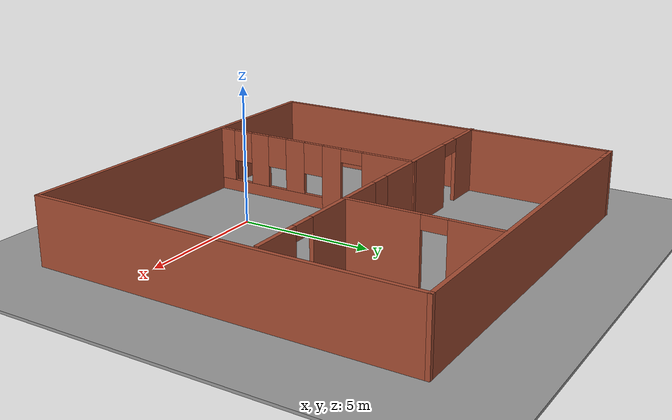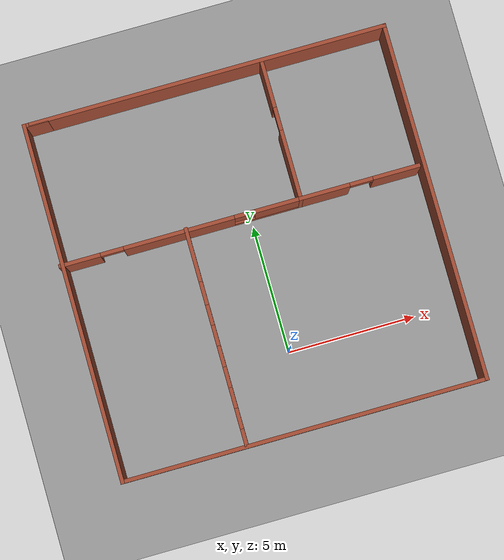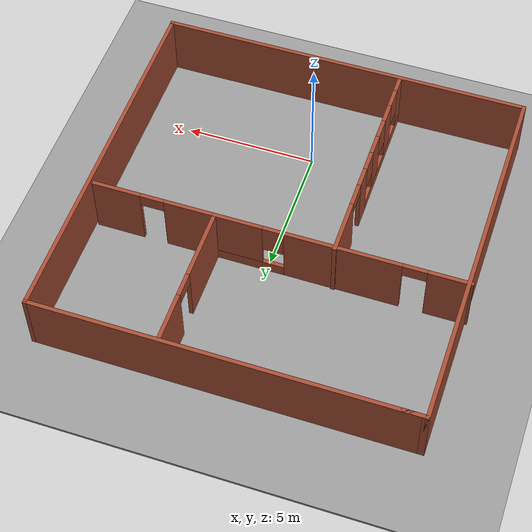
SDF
<sdf version="1.7">
 <world name="default">
  <light name="sun" type="directional">
   <pose>0 0 10 0 -0 0</pose>
   <diffuse>0.8 0.8 0.8 1</diffuse>
   <specular>0.2 0.2 0.2 1</specular>
   <attenuation>
    <range>1000</range>
    <constant>0.9</constant>
    <linear>0.01</linear>
    <quadratic>0.001</quadratic>
   </attenuation>
   <direction>-0.5 0.1 -0.9</direction>
   <spot><inner_angle>0</inner_angle><outer_angle>0</outer_angle><falloff>0</falloff></spot>
  </light>
  <model name="ground_plane">
   <static>1</static>
   <link name="link">
    <collision name="collision">
     <geometry><plane><normal>0 0 1</normal><size>100 100</size></plane></geometry>
     <surface>
      <contact><collide_bitmask>65535</collide_bitmask></contact>
      <friction><ode><mu>100</mu><mu2>50</mu2></ode></friction>
     </surface>
    </collision>
    <visual name="visual">
     <cast_shadows>0</cast_shadows>
     <geometry><plane><normal>0 0 1</normal><size>100 100</size></plane></geometry>
     <material>
      <script><uri>file://media/materials/scripts/gazebo.material</uri><name>Gazebo/Grey</name></script>
     </material>
    </visual>
   </link>
  </model>
  <gravity>0 0 -9.8</gravity>
  <magnetic_field>6e-06 2.3e-05 -4.2e-05</magnetic_field>
  <atmosphere type="adiabatic"/>
  <physics type="ode">
   <max_step_size>0.001</max_step_size>
   <real_time_factor>1</real_time_factor>
   <real_time_update_rate>1000</real_time_update_rate>
  </physics>
  <scene><ambient>0.4 0.4 0.4 1</ambient><background>0.7 0.7 0.7 1</background><shadows>1</shadows></scene>
  <audio><device>default</device></audio>
  <spherical_coordinates>
   <surface_model>EARTH_WGS84</surface_model>
   <latitude_deg>0</latitude_deg>
   <longitude_deg>0</longitude_deg>
   <elevation>0</elevation>
   <heading_deg>0</heading_deg>
  </spherical_coordinates>
  <model name="building_for_fobot">
   <pose>-0.31445 3.87784 0 0 -0 0</pose>
   <link name="Wall_11">
    <pose>-2.41398 1.45663 0 0 -0 0</pose>
    <visual name="Wall_11_Visual_0">
     <pose>-3.94034 0 1.25 0 -0 0</pose>
     <geometry><box><size>1.61932 0.15 2.5</size></box></geometry>
     <material>
      <script><uri>file://media/materials/scripts/gazebo.material</uri><name>Gazebo/Bricks</name></script>
      <ambient>1 1 1 1</ambient>
     </material>
     <meta><layer>0</layer></meta>
    </visual>
    <collision name="Wall_11_Collision_0">
     <geometry><box><size>1.61932 0.15 2.5</size></box></geometry>
     <pose>-3.94034 0 1.25 0 -0 0</pose>
    </collision>
    <visual name="Wall_11_Visual_1">
     <pose>-0.0736 0 1.25 0 -0 0</pose>
     <geometry><box><size>4.31416 0.15 2.5</size></box></geometry>
     <material>
      <script><uri>file://media/materials/scripts/gazebo.material</uri><name>Gazebo/Bricks</name></script>
      <ambient>1 1 1 1</ambient>
     </material>
     <meta><layer>0</layer></meta>
    </visual>
    <collision name="Wall_11_Collision_1">
     <geometry><box><size>4.31416 0.15 2.5</size></box></geometry>
     <pose>-0.0736 0 1.25 0 -0 0</pose>
    </collision>
    <visual name="Wall_11_Visual_2">
     <pose>3.41674 0 0.25 0 -0 0</pose>
     <geometry><box><size>2.66652 0.15 0.5</size></box></geometry>
     <material>
      <script><uri>file://media/materials/scripts/gazebo.material</uri><name>Gazebo/Bricks</name></script>
      <ambient>1 1 1 1</ambient>
     </material>
     <meta><layer>0</layer></meta>
    </visual>
    <collision name="Wall_11_Collision_2">
     <geometry><box><size>2.66652 0.15 0.5</size></box></geometry>
     <pose>3.41674 0 0.25 0 -0 0</pose>
    </collision>
    <visual name="Wall_11_Visual_3">
     <pose>3.81674 0 1.5 0 -0 0</pose>
     <geometry><box><size>1.86652 0.15 2</size></box></geometry>
     <material>
      <script><uri>file://media/materials/scripts/gazebo.material</uri><name>Gazebo/Bricks</name></script>
      <ambient>1 1 1 1</ambient>
     </material>
     <meta><layer>0</layer></meta>
    </visual>
    <collision name="Wall_11_Collision_3">
     <geometry><box><size>1.86652 0.15 2</size></box></geometry>
     <pose>3.81674 0 1.5 0 -0 0</pose>
    </collision>
    <visual name="Wall_11_Visual_4">
     <pose>2.48348 0 1.9 0 -0 0</pose>
     <geometry><box><size>0.8 0.15 1.2</size></box></geometry>
     <material>
      <script><uri>file://media/materials/scripts/gazebo.material</uri><name>Gazebo/Bricks</name></script>
      <ambient>1 1 1 1</ambient>
     </material>
     <meta><layer>0</layer></meta>
    </visual>
    <collision name="Wall_11_Collision_4">
     <geometry><box><size>0.8 0.15 1.2</size></box></geometry>
     <pose>2.48348 0 1.9 0 -0 0</pose>
    </collision>
    <visual name="Wall_11_Visual_5">
     <pose>-2.68068 0 2.25 0 -0 0</pose>
     <geometry><box><size>0.9 0.15 0.5</size></box></geometry>
     <material>
      <script><uri>file://media/materials/scripts/gazebo.material</uri><name>Gazebo/Bricks</name></script>
      <ambient>1 1 1 1</ambient>
     </material>
     <meta><layer>0</layer></meta>
    </visual>
    <collision name="Wall_11_Collision_5">
     <geometry><box><size>0.9 0.15 0.5</size></box></geometry>
     <pose>-2.68068 0 2.25 0 -0 0</pose>
    </collision>
   </link>
   <link name="Wall_12">
    <pose>2.26102 4.13162 0 0 -0 1.5708</pose>
    <visual name="Wall_12_Visual_0">
     <pose>-1.36837 0 1.25 0 -0 0</pose>
     <geometry><box><size>2.76326 0.15 2.5</size></box></geometry>
     <material>
      <script><uri>file://media/materials/scripts/gazebo.material</uri><name>Gazebo/Bricks</name></script>
      <ambient>1 1 1 1</ambient>
     </material>
     <meta><layer>0</layer></meta>
    </visual>
    <collision name="Wall_12_Collision_0">
     <geometry><box><size>2.76326 0.15 2.5</size></box></geometry>
     <pose>-1.36837 0 1.25 0 -0 0</pose>
    </collision>
    <visual name="Wall_12_Visual_1">
     <pose>1.83163 0 1.25 0 -0 0</pose>
     <geometry><box><size>1.83674 0.15 2.5</size></box></geometry>
     <material>
      <script><uri>file://media/materials/scripts/gazebo.material</uri><name>Gazebo/Bricks</name></script>
      <ambient>1 1 1 1</ambient>
     </material>
     <meta><layer>0</layer></meta>
    </visual>
    <collision name="Wall_12_Collision_1">
     <geometry><box><size>1.83674 0.15 2.5</size></box></geometry>
     <pose>1.83163 0 1.25 0 -0 0</pose>
    </collision>
    <visual name="Wall_12_Visual_2">
     <pose>0.463256 0 2.25 0 -0 0</pose>
     <geometry><box><size>0.9 0.15 0.5</size></box></geometry>
     <material>
      <script><uri>file://media/materials/scripts/gazebo.material</uri><name>Gazebo/Bricks</name></script>
      <ambient>1 1 1 1</ambient>
     </material>
     <meta><layer>0</layer></meta>
    </visual>
    <collision name="Wall_12_Collision_2">
     <geometry><box><size>0.9 0.15 0.5</size></box></geometry>
     <pose>0.463256 0 2.25 0 -0 0</pose>
    </collision>
   </link>
   <link name="Wall_16">
    <pose>-2.20397 -2.67185 0 0 -0 -1.5708</pose>
    <visual name="Wall_16_Visual_0">
     <pose>-3.19193 0 1.25 0 -0 0</pose>
     <geometry><box><size>2.11614 0.15 2.5</size></box></geometry>
     <material>
      <script><uri>file://media/materials/scripts/gazebo.material</uri><name>Gazebo/Bricks</name></script>
      <ambient>1 1 1 1</ambient>
     </material>
     <meta><layer>0</layer></meta>
    </visual>
    <collision name="Wall_16_Collision_0">
     <geometry><box><size>2.11614 0.15 2.5</size></box></geometry>
     <pose>-3.19193 0 1.25 0 -0 0</pose>
    </collision>
    <visual name="Wall_16_Visual_1">
     <pose>-0.837924 0 1.25 0 -0 0</pose>
     <geometry><box><size>0.791876 0.15 2.5</size></box></geometry>
     <material>
      <script><uri>file://media/materials/scripts/gazebo.material</uri><name>Gazebo/Bricks</name></script>
      <ambient>1 1 1 1</ambient>
     </material>
     <meta><layer>0</layer></meta>
    </visual>
    <collision name="Wall_16_Collision_1">
     <geometry><box><size>0.791876 0.15 2.5</size></box></geometry>
     <pose>-0.837924 0 1.25 0 -0 0</pose>
    </collision>
    <visual name="Wall_16_Visual_2">
     <pose>1.90401 0 0.25 0 -0 0</pose>
     <geometry><box><size>4.69199 0.15 0.5</size></box></geometry>
     <material>
      <script><uri>file://media/materials/scripts/gazebo.material</uri><name>Gazebo/Bricks</name></script>
      <ambient>1 1 1 1</ambient>
     </material>
     <meta><layer>0</layer></meta>
    </visual>
    <collision name="Wall_16_Collision_2">
     <geometry><box><size>4.69199 0.15 0.5</size></box></geometry>
     <pose>1.90401 0 0.25 0 -0 0</pose>
    </collision>
    <visual name="Wall_16_Visual_3">
     <pose>0.765413 0 1.5 0 -0 0</pose>
     <geometry><box><size>0.814798 0.15 2</size></box></geometry>
     <material>
      <script><uri>file://media/materials/scripts/gazebo.material</uri><name>Gazebo/Bricks</name></script>
      <ambient>1 1 1 1</ambient>
     </material>
     <meta><layer>0</layer></meta>
    </visual>
    <collision name="Wall_16_Collision_3">
     <geometry><box><size>0.814798 0.15 2</size></box></geometry>
     <pose>0.765413 0 1.5 0 -0 0</pose>
    </collision>
    <visual name="Wall_16_Visual_4">
     <pose>2.3714 0 1.5 0 -0 0</pose>
     <geometry><box><size>0.797176 0.15 2</size></box></geometry>
     <material>
      <script><uri>file://media/materials/scripts/gazebo.material</uri><name>Gazebo/Bricks</name></script>
      <ambient>1 1 1 1</ambient>
     </material>
     <meta><layer>0</layer></meta>
    </visual>
    <collision name="Wall_16_Collision_4">
     <geometry><box><size>0.797176 0.15 2</size></box></geometry>
     <pose>2.3714 0 1.5 0 -0 0</pose>
    </collision>
    <visual name="Wall_16_Visual_5">
     <pose>3.90999 0 1.5 0 -0 0</pose>
     <geometry><box><size>0.680012 0.15 2</size></box></geometry>
     <material>
      <script><uri>file://media/materials/scripts/gazebo.material</uri><name>Gazebo/Bricks</name></script>
      <ambient>1 1 1 1</ambient>
     </material>
     <meta><layer>0</layer></meta>
    </visual>
    <collision name="Wall_16_Collision_5">
     <geometry><box><size>0.680012 0.15 2</size></box></geometry>
     <pose>3.90999 0 1.5 0 -0 0</pose>
    </collision>
    <visual name="Wall_16_Visual_6">
     <pose>-0.041986 0 1.9 0 -0 0</pose>
     <geometry><box><size>0.8 0.15 1.2</size></box></geometry>
     <material>
      <script><uri>file://media/materials/scripts/gazebo.material</uri><name>Gazebo/Bricks</name></script>
      <ambient>1 1 1 1</ambient>
     </material>
     <meta><layer>0</layer></meta>
    </visual>
    <collision name="Wall_16_Collision_6">
     <geometry><box><size>0.8 0.15 1.2</size></box></geometry>
     <pose>-0.041986 0 1.9 0 -0 0</pose>
    </collision>
    <visual name="Wall_16_Visual_7">
     <pose>1.57281 0 1.9 0 -0 0</pose>
     <geometry><box><size>0.8 0.15 1.2</size></box></geometry>
     <material>
      <script><uri>file://media/materials/scripts/gazebo.material</uri><name>Gazebo/Bricks</name></script>
      <ambient>1 1 1 1</ambient>
     </material>
     <meta><layer>0</layer></meta>
    </visual>
    <collision name="Wall_16_Collision_7">
     <geometry><box><size>0.8 0.15 1.2</size></box></geometry>
     <pose>1.57281 0 1.9 0 -0 0</pose>
    </collision>
    <visual name="Wall_16_Visual_8">
     <pose>3.16999 0 1.9 0 -0 0</pose>
     <geometry><box><size>0.8 0.15 1.2</size></box></geometry>
     <material>
      <script><uri>file://media/materials/scripts/gazebo.material</uri><name>Gazebo/Bricks</name></script>
      <ambient>1 1 1 1</ambient>
     </material>
     <meta><layer>0</layer></meta>
    </visual>
    <collision name="Wall_16_Collision_8">
     <geometry><box><size>0.8 0.15 1.2</size></box></geometry>
     <pose>3.16999 0 1.9 0 -0 0</pose>
    </collision>
    <visual name="Wall_16_Visual_9">
     <pose>-1.68386 0 2.25 0 -0 0</pose>
     <geometry><box><size>0.9 0.15 0.5</size></box></geometry>
     <material>
      <script><uri>file://media/materials/scripts/gazebo.material</uri><name>Gazebo/Bricks</name></script>
      <ambient>1 1 1 1</ambient>
     </material>
     <meta><layer>0</layer></meta>
    </visual>
    <collision name="Wall_16_Collision_9">
     <geometry><box><size>0.9 0.15 0.5</size></box></geometry>
     <pose>-1.68386 0 2.25 0 -0 0</pose>
    </collision>
   </link>
   <link name="Wall_18">
    <pose>4.56102 1.45663 0 0 -0 0</pose>
    <visual name="Wall_18_Visual_0">
     <pose>-1.37859 0 1.25 0 -0 0</pose>
     <geometry><box><size>1.99282 0.15 2.5</size></box></geometry>
     <material>
      <script><uri>file://media/materials/scripts/gazebo.material</uri><name>Gazebo/Bricks</name></script>
      <ambient>1 1 1 1</ambient>
     </material>
     <meta><layer>0</layer></meta>
    </visual>
    <collision name="Wall_18_Collision_0">
     <geometry><box><size>1.99282 0.15 2.5</size></box></geometry>
     <pose>-1.37859 0 1.25 0 -0 0</pose>
    </collision>
    <visual name="Wall_18_Visual_1">
     <pose>1.44641 0 1.25 0 -0 0</pose>
     <geometry><box><size>1.85718 0.15 2.5</size></box></geometry>
     <material>
      <script><uri>file://media/materials/scripts/gazebo.material</uri><name>Gazebo/Bricks</name></script>
      <ambient>1 1 1 1</ambient>
     </material>
     <meta><layer>0</layer></meta>
    </visual>
    <collision name="Wall_18_Collision_1">
     <geometry><box><size>1.85718 0.15 2.5</size></box></geometry>
     <pose>1.44641 0 1.25 0 -0 0</pose>
    </collision>
    <visual name="Wall_18_Visual_2">
     <pose>0.067821 0 2.25 0 -0 0</pose>
     <geometry><box><size>0.9 0.15 0.5</size></box></geometry>
     <material>
      <script><uri>file://media/materials/scripts/gazebo.material</uri><name>Gazebo/Bricks</name></script>
      <ambient>1 1 1 1</ambient>
     </material>
     <meta><layer>0</layer></meta>
    </visual>
    <collision name="Wall_18_Collision_2">
     <geometry><box><size>0.9 0.15 0.5</size></box></geometry>
     <pose>0.067821 0 2.25 0 -0 0</pose>
    </collision>
   </link>
   <link name="Wall_3">
    <collision name="Wall_3_Collision">
     <geometry><box><size>14.25 0.15 2.5</size></box></geometry>
     <pose>0 0 1.25 0 -0 0</pose>
    </collision>
    <visual name="Wall_3_Visual">
     <pose>0 0 1.25 0 -0 0</pose>
     <geometry><box><size>14.25 0.15 2.5</size></box></geometry>
     <material>
      <script><uri>file://media/materials/scripts/gazebo.material</uri><name>Gazebo/Bricks</name></script>
      <ambient>1 1 1 1</ambient>
     </material>
     <meta><layer>0</layer></meta>
    </visual>
    <pose>0.038977 -6.925 0 0 -0 0</pose>
   </link>
   <link name="Wall_4">
    <collision name="Wall_4_Collision">
     <geometry><box><size>14 0.15 2.5</size></box></geometry>
     <pose>0 0 1.25 0 -0 0</pose>
    </collision>
    <visual name="Wall_4_Visual">
     <pose>0 0 1.25 0 -0 0</pose>
     <geometry><box><size>14 0.15 2.5</size></box></geometry>
     <material>
      <script><uri>file://media/materials/scripts/gazebo.material</uri><name>Gazebo/Bricks</name></script>
      <ambient>1 1 1 1</ambient>
     </material>
     <meta><layer>0</layer></meta>
    </visual>
    <pose>7.08898 0 0 0 -0 1.5708</pose>
   </link>
   <link name="Wall_5">
    <collision name="Wall_5_Collision">
     <geometry><box><size>14 0.15 2.5</size></box></geometry>
     <pose>0 0 1.25 0 -0 0</pose>
    </collision>
    <visual name="Wall_5_Visual">
     <pose>0 0 1.25 0 -0 0</pose>
     <geometry><box><size>14 0.15 2.5</size></box></geometry>
     <material>
      <script><uri>file://media/materials/scripts/gazebo.material</uri><name>Gazebo/Bricks</name></script>
      <ambient>1 1 1 1</ambient>
     </material>
     <meta><layer>0</layer></meta>
    </visual>
    <pose>0.163977 6.925 0 0 -0 3.14159</pose>
   </link>
   <link name="Wall_8">
    <collision name="Wall_8_Collision">
     <geometry><box><size>14 0.15 2.5</size></box></geometry>
     <pose>0 0 1.25 0 -0 0</pose>
    </collision>
    <visual name="Wall_8_Visual">
     <pose>0 0 1.25 0 -0 0</pose>
     <geometry><box><size>14 0.15 2.5</size></box></geometry>
     <material>
      <script><uri>file://media/materials/scripts/gazebo.material</uri><name>Gazebo/Bricks</name></script>
      <ambient>1 1 1 1</ambient>
     </material>
     <meta><layer>0</layer></meta>
    </visual>
    <pose>-7.01102 0 0 0 -0 1.5708</pose>
   </link>
   <link name="Wall_9">
    <collision name="Wall_9_Collision">
     <geometry><box><size>1 0.15 2.5</size></box></geometry>
     <pose>0 0 1.25 0 -0 0</pose>
    </collision>
    <visual name="Wall_9_Visual">
     <pose>0 0 1.25 0 -0 0</pose>
     <geometry><box><size>1 0.15 2.5</size></box></geometry>
     <material>
      <script><uri>file://media/materials/scripts/gazebo.material</uri><name>Gazebo/Bricks</name></script>
      <ambient>1 1 1 1</ambient>
     </material>
     <meta><layer>0</layer></meta>
    </visual>
    <pose>-6.58602 6.925 0 0 -0 0</pose>
   </link>
   <static>1</static>
  </model>
  <model name="ground_plane_0">
   <static>1</static>
   <link name="link">
    <collision name="collision">
     <geometry><plane><normal>0 0 1</normal><size>100 100</size></plane></geometry>
     <surface>
      <contact><collide_bitmask>65535</collide_bitmask></contact>
      <friction><ode><mu>100</mu><mu2>50</mu2></ode></friction>
     </surface>
    </collision>
    <visual name="visual">
     <cast_shadows>0</cast_shadows>
     <geometry><plane><normal>0 0 1</normal><size>100 100</size></plane></geometry>
     <material>
      <script><uri>file://media/materials/scripts/gazebo.material</uri><name>Gazebo/Grey</name></script>
     </material>
    </visual>
   </link>
   <pose>0.336129 2.91047 0 0 -0 0</pose>
  </model>
 </world>
</sdf>
